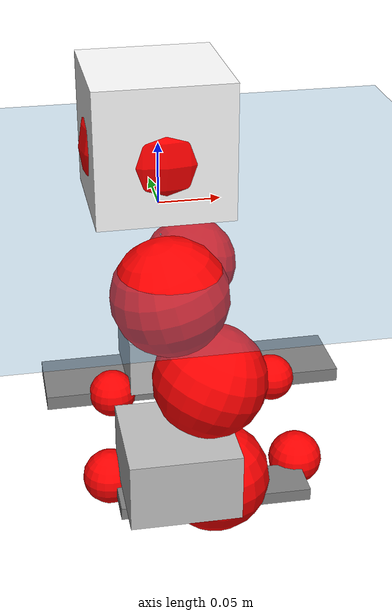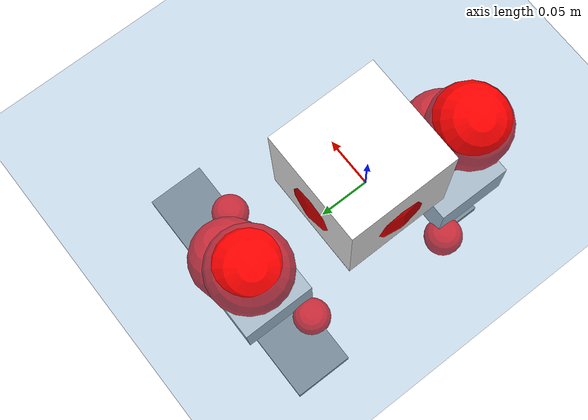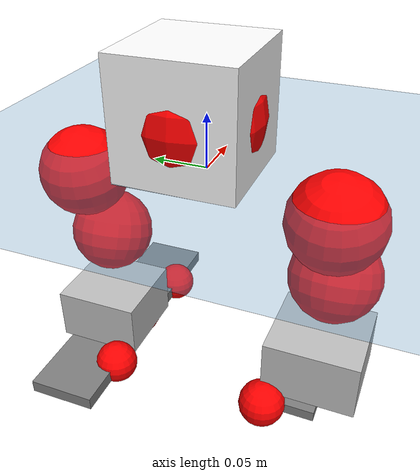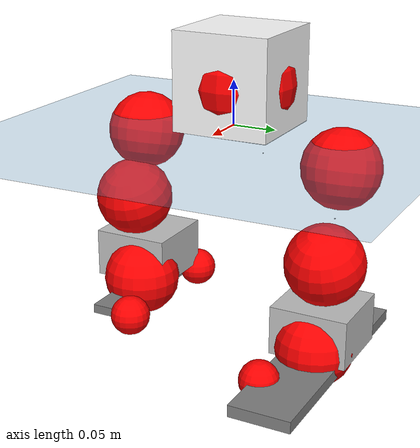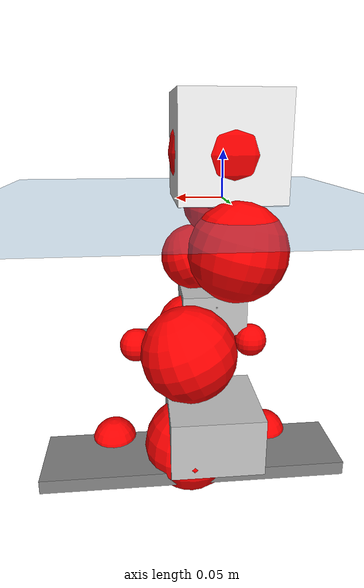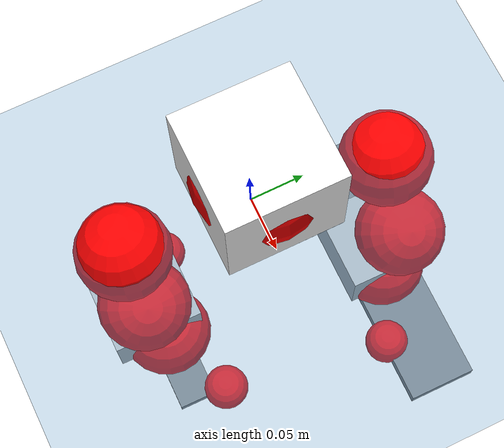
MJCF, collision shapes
<mujoco model="pi_12dof_release_v1">
  <compiler angle="radian" assetdir="assets" balanceinertia="true" inertiafromgeom="false"/>

  <option timestep="0.005" density="1.2" viscosity="2e-05"/>

  <size nkey="1"/>

  <visual>
    <quality shadowsize="8192"/>
    <map shadowclip="0.5"/>
  </visual>

  <default>
    <default class="/">
      <joint armature="0.01" damping="0.01" frictionloss="0.01"/>
      <geom contype="0" conaffinity="0" group="1" solref="-1000 -80"/>
      <site size="0.01 0.005 0.005" group="5"/>
      <general forcelimited="true" biastype="affine" gainprm="20" biasprm="0 -20 -0.5"/>
      <default class="foot">
        <geom size="0.0845 0.036 0.005" type="box" condim="6" group="4" priority="1" friction="0.9 0.2 0.2" solimp="0.015 1 0.005"/>
      </default>
      <default class="reward_collision_sphere">
        <geom group="5" rgba="1 0 0 1"/>
      </default>
    </default>
  </default>

  <asset>
    <texture type="skybox" colorspace="auto" name="//unnamed_texture_0" builtin="gradient" rgb1="0.95 0.95 0.95" rgb2="0.95 0.95 0.95" width="100" height="600"/>
    <texture type="2d" colorspace="auto" name="texplane" builtin="checker" rgb1="0.345 0.575 0.748" rgb2="0.345 0.575 0.748" markrgb="1 1 1" width="512" height="512"/>
    <material name="MatPlane" class="/" texture="texplane" texuniform="true" texrepeat="2 2" specular="0.9"/>
    <mesh name="baselink_1" class="/" file="baselink_1.STL"/>
    <mesh name="r_hip_pitch_link" class="/" file="r_hip_pitch_link.STL"/>
    <mesh name="r_hip_roll_link" class="/" file="r_hip_roll_link.STL"/>
    <mesh name="r_thigh_link" class="/" file="r_thigh_link.STL"/>
    <mesh name="r_calf_link" class="/" file="r_calf_link.STL"/>
    <mesh name="r_ankle_pitch_link" class="/" file="r_ankle_pitch_link.STL"/>
    <mesh name="r_ankle_roll_link" class="/" file="r_ankle_roll_link.STL"/>
    <mesh name="l_hip_pitch_link" class="/" file="l_hip_pitch_link.STL"/>
    <mesh name="l_hip_roll_link" class="/" file="l_hip_roll_link.STL"/>
    <mesh name="l_thigh_link" class="/" file="l_thigh_link.STL"/>
    <mesh name="l_calf_link" class="/" file="l_calf_link.STL"/>
    <mesh name="l_ankle_pitch_link" class="/" file="l_ankle_pitch_link.STL"/>
    <mesh name="l_ankle_roll_link" class="/" file="l_ankle_roll_link.STL"/>
  </asset>

  <worldbody>
    <geom name="floor" class="/" size="100 100 0.125" type="plane" group="0" material="MatPlane"/>
    <light name="toplight_shadow" class="/" pos="0 0 5" dir="0.0990148 0.0990148 -0.990148" type="directional" ambient="0.04 0.04 0.04" diffuse="0.55 0.55 0.55" specular="0.12 0.12 0.12"/>
    <light name="toplight_fill" class="/" pos="0 0 5" dir="0.0990148 0.0990148 -0.990148" type="directional" castshadow="false" ambient="0.04 0.04 0.04" diffuse="0.3 0.3 0.3" specular="0.08 0.08 0.08"/>
    <body name="trunk" pos="-0.000926115 0.00863757 0.00415237" quat="0.999991 -0.00415413 -0.000953045 0.00086769">
      <inertial pos="0.0100342 0.0134724 0.0161485" quat="0.713122 0.0200234 0.0324384 0.700003" mass="2.90113" diaginertia="0.0257852 0.0856426 0.000399042"/>
      <joint name="//unnamed_joint_0" type="free"/>
      <geom name="//unnamed_geom_1" class="/" type="mesh" density="0" rgba="1 1 1 1" mesh="baselink_1"/>
      <geom name="//unnamed_geom_2" class="/" size="0.0547681 0.0547681 0.0547681" pos="0 0 0.0499436" type="box" rgba="1 1 1 1"/>
      <geom name="//unnamed_geom_3" class="reward_collision_sphere" size="0.060245" pos="0 0 0.0437006"/>
      <site name="imu" class="/" pos="0.00438513 -0.000343671 -0.000260568" size="0.0109536"/>
      <camera name="track" class="/" pos="0 -3.04164 0" quat="0.707107 0.707107 0 0" mode="trackcom"/>
      <camera name="ego_camera" class="/" pos="0.0855729 0 0.112373" quat="-0.5 -0.5 0.5 0.5"/>
      <body name="r_hip_pitch_link" pos="-0.00190087 -0.0335344 -0.0209199" quat="0.992198 -2.60984e-06 -0.12467 4.24015e-05">
        <inertial pos="0.0033476 -0.0732527 0.00148847" quat="0.0261955 0.710122 0.0303928 0.702934" mass="0.473936" diaginertia="0.000203497 0.000830426 7.60291e-06"/>
        <joint name="r_hip_pitch_joint" class="/" pos="0 0 0" axis="-0.00235003 -0.999988 -0.0044055" range="-1.91102 1.10225" armature="0.011192" damping="0" frictionloss="0.00399419"/>
        <geom name="//unnamed_geom_4" class="/" type="mesh" density="0" rgba="0.75294 0.75294 0.75294 1" mesh="r_hip_pitch_link"/>
        <geom name="//unnamed_geom_5" class="/" size="0.000547681 0.000547681 0.000547681" type="box" rgba="0.75294 0.75294 0.75294 1"/>
        <body name="r_hip_roll_link" pos="-0.0103634 -0.0932816 -0.00363225" quat="0.999975 -0.00100839 0.00270995 -0.00639049">
          <inertial pos="-0.00201625 -0.0136885 -0.0359475" quat="0.689281 -0.086197 -0.0965498 0.712839" mass="0.473028" diaginertia="0.000751495 0.00190911 1.23026e-05"/>
          <joint name="r_hip_roll_joint" class="/" pos="0 0 0" axis="-0.99944 0.033079 -0.00508218" stiffness="0.00266153" range="-0.120879 0.511221" armature="0.00484624" damping="0" frictionloss="0.0114074"/>
          <geom name="//unnamed_geom_6" class="/" type="mesh" density="0" rgba="0.75294 0.75294 0.75294 1" mesh="r_hip_roll_link"/>
          <geom name="//unnamed_geom_7" class="/" size="0.000547681 0.000547681 0.000547681" type="box" rgba="0.75294 0.75294 0.75294 1"/>
          <geom name="//unnamed_geom_8" class="reward_collision_sphere" size="0.0438145"/>
          <body name="r_thigh_link" pos="-0.00297566 -0.00248246 -0.0414735" quat="1 -2.56079e-05 3.27788e-05 7.15015e-05">
            <inertial pos="0.0118176 0.0099049 -0.0192347" quat="0.731577 0.681383 0.0208332 -0.00882671" mass="0.153863" diaginertia="0.000269305 0.000715629 6.11885e-06"/>
            <joint name="r_thigh_joint" class="/" pos="0 0 0" axis="-0.0561669 0.00198237 -0.998419" stiffness="0.0643487" range="-0.0335207 0.863806" armature="0.00449098" damping="0.078263" frictionloss="0.00374353"/>
            <geom name="//unnamed_geom_9" class="/" type="mesh" density="0" rgba="0.75294 0.75294 0.75294 1" mesh="r_thigh_link"/>
            <geom name="//unnamed_geom_10" class="/" size="0.000547681 0.000547681 0.000547681" type="box" rgba="0.75294 0.75294 0.75294 1"/>
            <body name="r_calf_link" pos="0.0138936 0.00217974 -0.0369077" quat="0.947451 -0.000747187 0.3199 0.00106254">
              <inertial pos="0.00121852 -0.00701965 -0.0376664" quat="0.998169 -0.0495058 0.017475 -0.0300332" mass="1.14919" diaginertia="0.00766542 0.0284901 1.57436e-05"/>
              <joint name="r_calf_joint" class="/" pos="0 0 0" axis="0.0109981 -0.997421 -0.0709184" stiffness="0.00944993" range="-1.51154 0.690302" armature="0.0106508" damping="0.0290272" frictionloss="0.00421341"/>
              <geom name="//unnamed_geom_11" class="/" type="mesh" density="0" rgba="0.75294 0.75294 0.75294 1" mesh="r_calf_link"/>
              <geom name="//unnamed_geom_12" class="/" size="0.000547681 0.000547681 0.000547681" type="box" rgba="0.75294 0.75294 0.75294 1"/>
              <geom name="//unnamed_geom_13" class="reward_collision_sphere" size="0.0438145"/>
              <body name="r_ankle_pitch_link" pos="0.00536279 0.00233291 -0.0756614" quat="0.979929 -0.000131409 -0.199347 -1.29696e-05">
                <inertial pos="-0.00126742 0.0136013 -0.0125253" quat="0.0171075 0.719121 -0.00908396 0.694615" mass="0.216792" diaginertia="0.00064962 0.00178666 1.12501e-05"/>
                <joint name="r_ankle_pitch_joint" class="/" pos="0 0 0" axis="-0.00650756 -0.999891 0.0132852" stiffness="0.00440319" range="-1.12307 0.751715" armature="0.00541472" damping="0" frictionloss="0.00446947"/>
                <geom name="//unnamed_geom_14" class="/" type="mesh" density="0" rgba="0.75294 0.75294 0.75294 1" mesh="r_ankle_pitch_link"/>
                <geom name="//unnamed_geom_15" class="/" size="0.0427191 0.0438145 0.0273841" type="box" rgba="0.75294 0.75294 0.75294 1"/>
                <body name="r_ankle_roll_link" pos="0.0884764 0.00902159 -0.0119013" quat="0.999999 0.000900698 0.000944655 -0.000506817">
                  <inertial pos="-0.0191377 -0.00817087 -0.00928718" quat="0.574745 0.429316 0.410753 0.562706" mass="0.560278" diaginertia="0.00192472 0.00613867 2.43597e-05"/>
                  <joint name="r_ankle_roll_joint" class="/" pos="0 0 0" axis="-0.997191 -0.0219108 -0.0716256" range="-0.432588 -0.0562842" armature="0.0112893" damping="0" frictionloss="0.00863832"/>
                  <geom name="//unnamed_geom_16" class="/" type="mesh" density="0" rgba="0.75294 0.75294 0.75294 1" mesh="r_ankle_roll_link"/>
                  <geom name="//unnamed_geom_17" class="/" type="mesh" rgba="0.75294 0.75294 0.75294 1" mesh="r_ankle_roll_link"/>
                  <geom name="right_foot" class="foot" size="0.075776 0.0182505 0.00501264" pos="-0.0581896 0 -0.027469"/>
                  <geom name="//unnamed_geom_19" class="reward_collision_sphere" size="0.0438145" pos="-0.0570486 0 -0.0124859"/>
                  <geom name="//unnamed_geom_20" class="reward_collision_sphere" size="0.0219073" pos="0.0171146 0.0304164 -0.0249718"/>
                  <geom name="//unnamed_geom_21" class="reward_collision_sphere" size="0.0219073" pos="-0.136917 0.0304164 -0.0249718"/>
                  <site name="right_foot" class="foot" pos="-0.0581896 0 -0.027469" size="0.0109536"/>
                </body>
              </body>
            </body>
          </body>
        </body>
      </body>
      <body name="l_hip_pitch_link" pos="0.0041921 0.0289145 -0.0303961" quat="0.992218 -0.000130879 -0.124512 3.17318e-05">
        <inertial pos="-0.00148207 0.0855244 -0.00807514" quat="-0.0289956 0.699825 0.0216507 0.713398" mass="0.642795" diaginertia="0.000272506 0.000985449 9.234e-06"/>
        <joint name="l_hip_pitch_joint" class="/" pos="0 0 0" axis="-0.0199246 0.999735 0.0115258" range="-1.26555 1.52417" armature="0.01159" damping="0.0133342" frictionloss="0.0103274"/>
        <geom name="//unnamed_geom_22" class="/" type="mesh" density="0" rgba="0.75294 0.75294 0.75294 1" mesh="l_hip_pitch_link"/>
        <geom name="//unnamed_geom_23" class="/" size="0.000547681 0.000547681 0.000547681" type="box" rgba="0.75294 0.75294 0.75294 1"/>
        <body name="l_hip_roll_link" pos="0.00368894 0.092869 -0.00357237" quat="0.99998 0.000680608 0.00625765 0.000711619">
          <inertial pos="-0.00162254 -0.0143912 -0.0425689" quat="0.66583 -0.0819924 -0.100196 0.734784" mass="0.590681" diaginertia="0.000694776 0.00202847 1.02867e-05"/>
          <joint name="l_hip_roll_joint" class="/" pos="0 0 0" axis="-0.998983 -0.0409256 -0.0189048" range="-0.510642 0.0261989" armature="0.00336224" damping="0.00335371" frictionloss="0.0149387"/>
          <geom name="//unnamed_geom_24" class="/" type="mesh" density="0" rgba="0.75294 0.75294 0.75294 1" mesh="l_hip_roll_link"/>
          <geom name="//unnamed_geom_25" class="/" size="0.000547681 0.000547681 0.000547681" type="box" rgba="0.75294 0.75294 0.75294 1"/>
          <geom name="//unnamed_geom_26" class="reward_collision_sphere" size="0.0438145"/>
          <body name="l_thigh_link" pos="0.00582576 0.00131617 -0.0524644" quat="0.999994 -0.00172378 -0.0011383 -0.00283269">
            <inertial pos="0.00117258 -0.012565 -0.0292542" quat="0.676171 0.736745 0.000222927 0.000447674" mass="0.15187" diaginertia="0.000262988 0.000840419 6.03422e-06"/>
            <joint name="l_thigh_joint" class="/" pos="0 0 0" axis="-0.000616808 -0.000555606 -1" range="-0.690521 0.228302" armature="0.0152457" damping="0.0664753" frictionloss="0.00854293"/>
            <geom name="//unnamed_geom_27" class="/" type="mesh" density="0" rgba="0.75294 0.75294 0.75294 1" mesh="l_thigh_link"/>
            <geom name="//unnamed_geom_28" class="/" size="0.000547681 0.000547681 0.000547681" type="box" rgba="0.75294 0.75294 0.75294 1"/>
            <body name="l_calf_link" pos="0.0136242 0.000861413 -0.0475163" quat="0.94993 0.000735932 0.312461 0.000571423">
              <inertial pos="0.00030925 0.00997718 -0.0422926" quat="0.999986 0.00197196 -0.00456425 0.00177012" mass="1.14386" diaginertia="0.00739785 0.0292286 1.46156e-05"/>
              <joint name="l_calf_joint" class="/" pos="0 0 0" axis="-0.0351715 0.999337 -0.00939161" stiffness="0.0716651" range="-0.872629 1.74466" armature="0.0139134" damping="0.0147314" frictionloss="0.00888686"/>
              <geom name="//unnamed_geom_29" class="/" type="mesh" density="0" rgba="0.75294 0.75294 0.75294 1" mesh="l_calf_link"/>
              <geom name="//unnamed_geom_30" class="/" size="0.000547681 0.000547681 0.000547681" type="box" rgba="0.75294 0.75294 0.75294 1"/>
              <geom name="//unnamed_geom_31" class="reward_collision_sphere" size="0.0438145"/>
              <body name="l_ankle_pitch_link" pos="0.00904841 -0.0100541 -0.0829837" quat="0.9803 -0.00119071 -0.197501 -0.0021139">
                <inertial pos="0.00649297 0.00854559 0.000416686" quat="-0.00476134 0.706608 -0.00618652 0.707562" mass="0.211379" diaginertia="0.000580065 0.00182154 1.2095e-05"/>
                <joint name="l_ankle_pitch_joint" class="/" pos="0 0 0" axis="-0.0020892 0.999997 -0.00138406" range="-0.476666 1.29505" armature="0.0169141" damping="0" frictionloss="0.0153526"/>
                <geom name="//unnamed_geom_32" class="/" type="mesh" density="0" rgba="0.75294 0.75294 0.75294 1" mesh="l_ankle_pitch_link"/>
                <geom name="//unnamed_geom_33" class="/" size="0.0427191 0.0438145 0.0273841" type="box" rgba="0.75294 0.75294 0.75294 1"/>
                <body name="l_ankle_roll_link" pos="0.0783591 0.000488379 -0.00619432" quat="1 -0.000178138 2.19395e-05 0.000402634">
                  <inertial pos="-0.019739 -0.00126844 -0.0117546" quat="0.562192 0.432725 0.430137 0.558275" mass="0.61642" diaginertia="0.00211187 0.00781776 2.74977e-05"/>
                  <joint name="l_ankle_roll_joint" class="/" pos="0 0 0" axis="-0.999992 0.00228463 -0.00325542" range="-0.423498 0.177134" armature="0.0118302" damping="0.0757092" frictionloss="0.0136447"/>
                  <geom name="//unnamed_geom_34" class="/" type="mesh" density="0" rgba="0.75294 0.75294 0.75294 1" mesh="l_ankle_roll_link"/>
                  <geom name="//unnamed_geom_35" class="/" type="mesh" rgba="0.75294 0.75294 0.75294 1" mesh="l_ankle_roll_link"/>
                  <geom name="left_foot" class="foot" size="0.140626 0.0340618 0.00650914" pos="-0.0581896 0 -0.027469"/>
                  <geom name="//unnamed_geom_37" class="reward_collision_sphere" size="0.0438145" pos="-0.0570486 0 -0.0124859"/>
                  <geom name="//unnamed_geom_38" class="reward_collision_sphere" size="0.0219073" pos="0.0171146 -0.0304164 -0.0249718"/>
                  <geom name="//unnamed_geom_39" class="reward_collision_sphere" size="0.0219073" pos="-0.136917 -0.0304164 -0.0249718"/>
                  <site name="left_foot" class="foot" pos="-0.0581896 0 -0.027469" size="0.0109536"/>
                </body>
              </body>
            </body>
          </body>
        </body>
      </body>
    </body>
  </worldbody>

  <contact>
    <pair class="/" geom1="floor" geom2="right_foot" name="//unnamed_contact_1"/>
    <pair class="/" geom1="floor" geom2="left_foot" name="//unnamed_contact_0"/>
  </contact>

  <actuator>
    <general name="r_hip_pitch_joint" class="/" joint="r_hip_pitch_joint" forcerange="-27.7508 27.7508" gainprm="25.3064" biasprm="0 -25.3064 -0.494217"/>
    <general name="r_hip_roll_joint" class="/" joint="r_hip_roll_joint" forcerange="-10.9503 10.9503" gainprm="25.3064" biasprm="0 -25.3064 -0.494217"/>
    <general name="r_thigh_joint" class="/" joint="r_thigh_joint" forcerange="-24.1065 24.1065" gainprm="25.3064" biasprm="0 -25.3064 -0.494217"/>
    <general name="r_calf_joint" class="/" joint="r_calf_joint" forcerange="-22.6482 22.6482" gainprm="25.3064" biasprm="0 -25.3064 -0.494217"/>
    <general name="r_ankle_pitch_joint" class="/" joint="r_ankle_pitch_joint" forcerange="-22.635 22.635" gainprm="25.3064" biasprm="0 -25.3064 -0.494217"/>
    <general name="r_ankle_roll_joint" class="/" joint="r_ankle_roll_joint" forcerange="-14.4266 14.4266" gainprm="25.3064" biasprm="0 -25.3064 -0.494217"/>
    <general name="l_hip_pitch_joint" class="/" joint="l_hip_pitch_joint" forcerange="-17.6875 17.6875" gainprm="25.3064" biasprm="0 -25.3064 -0.494217"/>
    <general name="l_hip_roll_joint" class="/" joint="l_hip_roll_joint" forcerange="-21.8705 21.8705" gainprm="25.3064" biasprm="0 -25.3064 -0.494217"/>
    <general name="l_thigh_joint" class="/" joint="l_thigh_joint" forcerange="-23.1304 23.1304" gainprm="25.3064" biasprm="0 -25.3064 -0.494217"/>
    <general name="l_calf_joint" class="/" joint="l_calf_joint" forcerange="-28.8085 28.8085" gainprm="25.3064" biasprm="0 -25.3064 -0.494217"/>
    <general name="l_ankle_pitch_joint" class="/" joint="l_ankle_pitch_joint" forcerange="-22.6553 22.6553" gainprm="25.3064" biasprm="0 -25.3064 -0.494217"/>
    <general name="l_ankle_roll_joint" class="/" joint="l_ankle_roll_joint" forcerange="-31.1919 31.1919" gainprm="25.3064" biasprm="0 -25.3064 -0.494217"/>
  </actuator>

  <sensor>
    <gyro site="imu" name="imu_angular_velocity"/>
    <velocimeter site="imu" name="imu_linear_velocity"/>
    <framelinvel objtype="site" objname="left_foot" name="left_foot_global_linear_velocity"/>
    <framelinvel objtype="site" objname="right_foot" name="right_foot_global_linear_velocity"/>
  </sensor>

  <keyframe>
    <key name="home" qpos="0 0 0.291 1 0 0 0 0.4 0 0 -0.8 0.4 0 -0.4 0 0 0.8 -0.4 0"/>
  </keyframe>
</mujoco>
